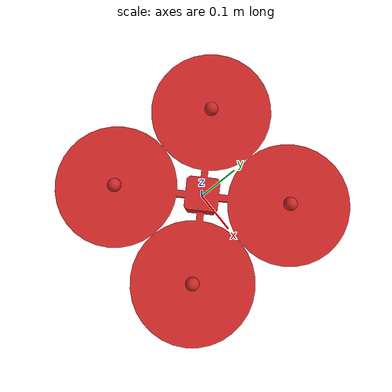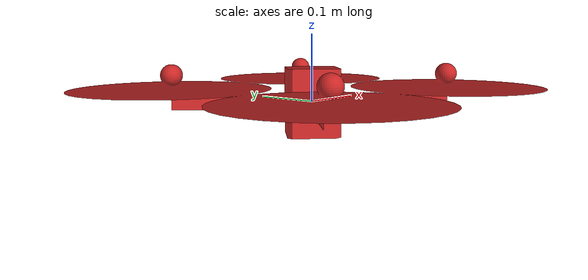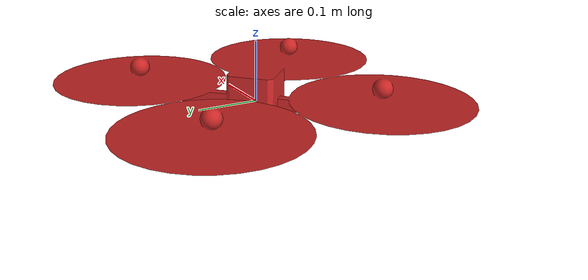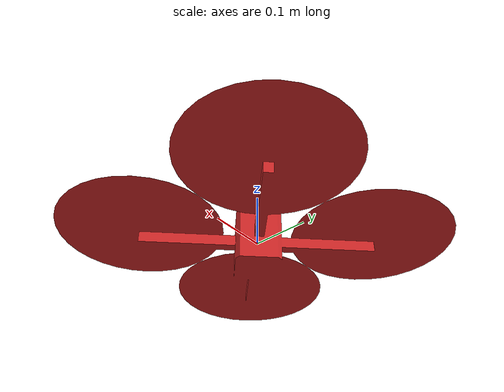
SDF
<?xml version="1.0"?>
<sdf version="1.5">

<!-- Quadcopter Model -->

    <model name="quadcopter">
        <link name="full_model">
            <inertial name="full_inertial">
                <pose>0 0 0 0 0 0</pose>
                <mass>0.4</mass>
                <inertia>
                    <ixx>0.0038278</ixx>
                    <ixy>0.0</ixy>
                    <ixz>0.0</ixz>
                    <iyy>0.0038278</iyy>
                    <izz>0.0071345</izz>
                </inertia>
            </inertial>

            <visual name="full_visual">
                <pose>0 0 0 0 0 0</pose>
                <geometry>
                    <mesh>
                        <uri>model://models/quad.dae</uri>
                        <scale>1 1 1</scale>
                    </mesh>
                </geometry>
                <material>
                    <script>
                        <name>Gazebo/Red</name>
                    </script>
                </material>
            </visual>

            <collision name="full_collision">
                <pose>0 0 0 0 0 0</pose>
                <geometry>
                    <mesh>
                        <uri>model://models/quad.stl</uri>\
                        <scale>1 1 1</scale>
                    </mesh>
                </geometry>
            </collision>

        </link>
    </model>
</sdf>
